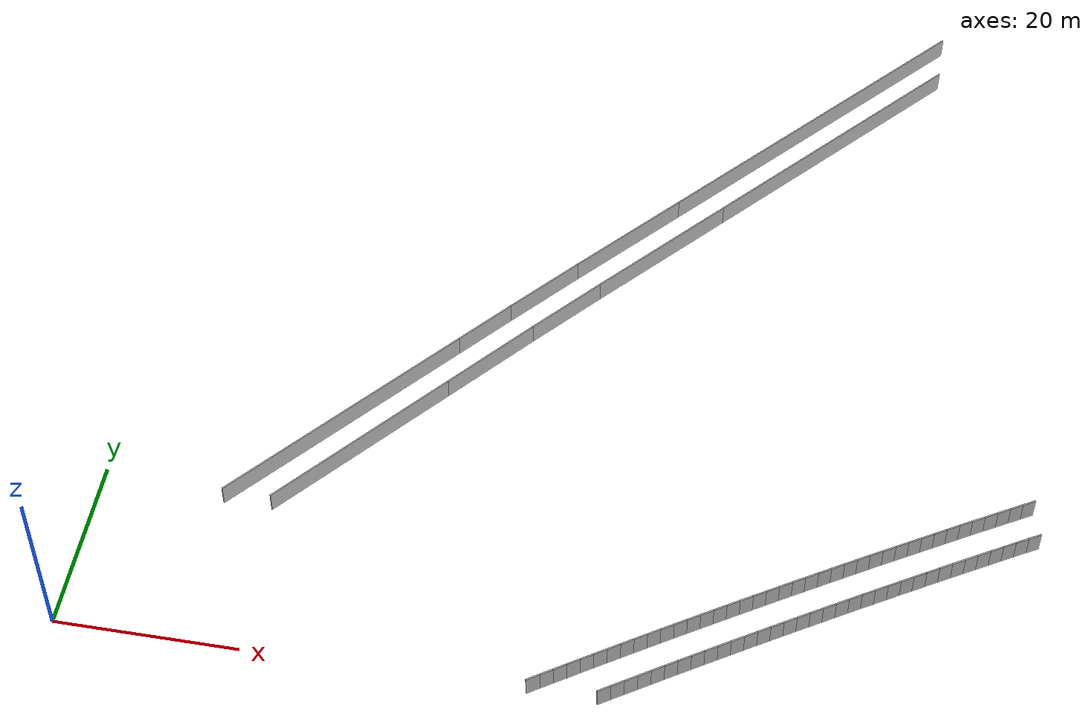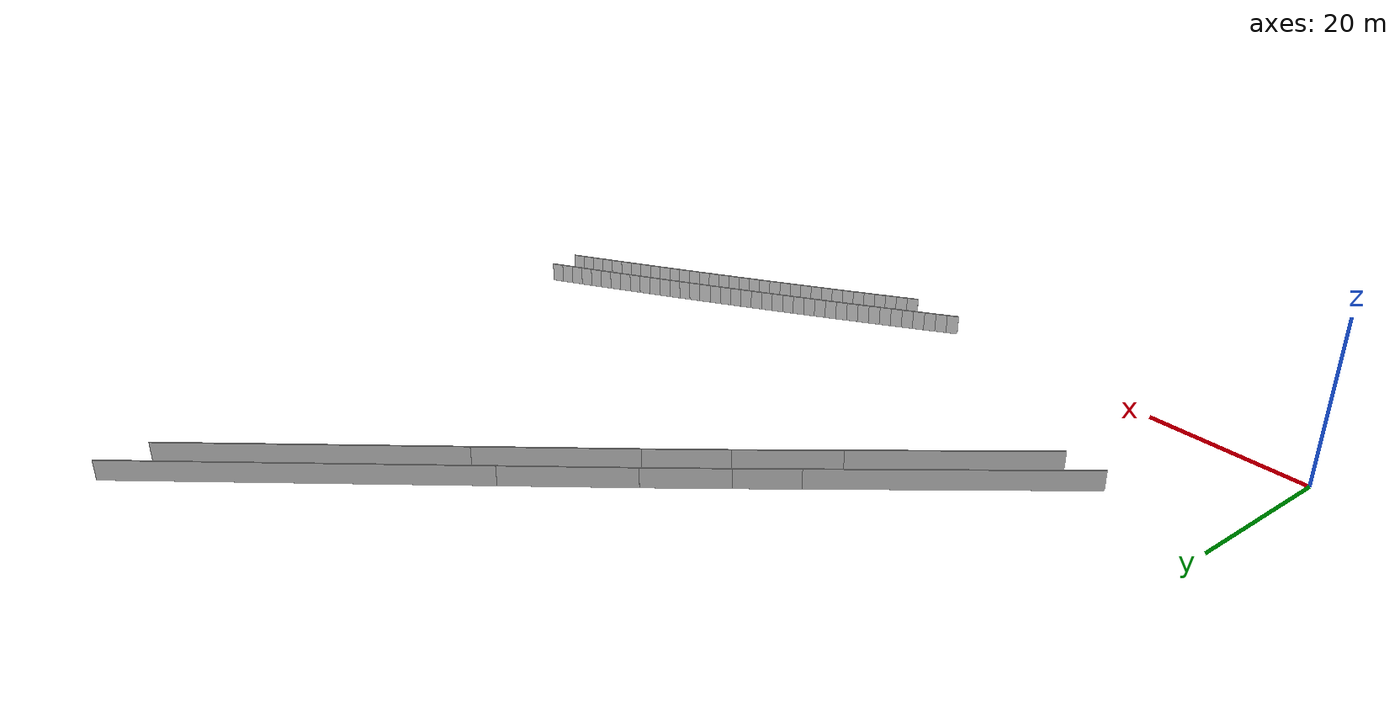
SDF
<?xml version="1.0" ?>
<sdf version="1.6">
  <model name="sps_0622">
    <pose frame="">0 0 0 0 -0 0</pose>
    <static>1</static>
    <self_collide>0</self_collide>
    <allow_auto_disable>0</allow_auto_disable>
    <link name="Wall46">
      <kinematic>0</kinematic>
      <gravity>1</gravity>
      <self_collide>0</self_collide>
      <collision name="collision">
        <geometry>
          <box>
            <size>9.91273 0.15 2.5</size>
          </box>
        </geometry>
        <pose frame="">0 0 0 0 -0 0</pose>
      </collision>
      <visual name="visual">
        <geometry>
          <box>
            <size>9.91273 0.15 2.5</size>
          </box>
        </geometry>
        <pose frame="">0 0 0 0 -0 0</pose>
        <cast_shadows>1</cast_shadows>
        <transparency>0.0</transparency>
      </visual>
      <pose frame="">45.5794 49.8246 1.25 0 0 -2.2749</pose>
    </link>
    <link name="Wall210">
      <kinematic>0</kinematic>
      <gravity>1</gravity>
      <self_collide>0</self_collide>
      <collision name="collision">
        <geometry>
          <box>
            <size>7.53093 0.15 2.5</size>
          </box>
        </geometry>
        <pose frame="">0 0 0 0 -0 0</pose>
      </collision>
      <visual name="visual">
        <geometry>
          <box>
            <size>7.53093 0.15 2.5</size>
          </box>
        </geometry>
        <pose frame="">0 0 0 0 -0 0</pose>
        <cast_shadows>1</cast_shadows>
        <transparency>0.0</transparency>
      </visual>
      <pose frame="">36.8851 45.7124 1.25 0 0 -2.26727</pose>
    </link>
    <link name="Wall211">
      <kinematic>0</kinematic>
      <gravity>1</gravity>
      <self_collide>0</self_collide>
      <collision name="collision">
        <geometry>
          <box>
            <size>32.4998 0.15 2.5</size>
          </box>
        </geometry>
        <pose frame="">0 0 0 0 -0 0</pose>
      </collision>
      <visual name="visual">
        <geometry>
          <box>
            <size>32.4998 0.15 2.5</size>
          </box>
        </geometry>
        <pose frame="">0 0 0 0 -0 0</pose>
        <cast_shadows>1</cast_shadows>
        <transparency>0.0</transparency>
      </visual>
      <pose frame="">24.0448 30.3585 1.25 0 0 -2.26727</pose>
    </link>
    <link name="Wall223">
      <kinematic>0</kinematic>
      <gravity>1</gravity>
      <self_collide>0</self_collide>
      <collision name="collision">
        <geometry>
          <box>
            <size>24.2854 0.15 2.5</size>
          </box>
        </geometry>
        <pose frame="">0 0 0 0 -0 0</pose>
      </collision>
      <visual name="visual">
        <geometry>
          <box>
            <size>24.2854 0.15 2.5</size>
          </box>
        </geometry>
        <pose frame="">0 0 0 0 -0 0</pose>
        <cast_shadows>1</cast_shadows>
        <transparency>0.0</transparency>
      </visual>
      <pose frame="">26.7001 27.2248 1.25 0 -0 0.876505</pose>
    </link>
    <link name="Wall224">
      <kinematic>0</kinematic>
      <gravity>1</gravity>
      <self_collide>0</self_collide>
      <collision name="collision">
        <geometry>
          <box>
            <size>12.349 0.15 2.5</size>
          </box>
        </geometry>
        <pose frame="">0 0 0 0 -0 0</pose>
      </collision>
      <visual name="visual">
        <geometry>
          <box>
            <size>12.349 0.15 2.5</size>
          </box>
        </geometry>
        <pose frame="">0 0 0 0 -0 0</pose>
        <cast_shadows>1</cast_shadows>
        <transparency>0.0</transparency>
      </visual>
      <pose frame="">38.4202 41.3017 1.25 0 -0 0.876505</pose>
    </link>
    <link name="Wall230">
      <kinematic>0</kinematic>
      <gravity>1</gravity>
      <self_collide>0</self_collide>
      <collision name="collision">
        <geometry>
          <box>
            <size>35.7402 0.15 2.5</size>
          </box>
        </geometry>
        <pose frame="">0 0 0 0 -0 0</pose>
      </collision>
      <visual name="visual">
        <geometry>
          <box>
            <size>35.7402 0.15 2.5</size>
          </box>
        </geometry>
        <pose frame="">0 0 0 0 -0 0</pose>
        <cast_shadows>1</cast_shadows>
        <transparency>0.0</transparency>
      </visual>
      <pose frame="">72.7946 81.4223 1.25 0 0 -2.28275</pose>
    </link>
    <link name="Wall231">
      <kinematic>0</kinematic>
      <gravity>1</gravity>
      <self_collide>0</self_collide>
      <collision name="collision">
        <geometry>
          <box>
            <size>18.876 0.15 2.5</size>
          </box>
        </geometry>
        <pose frame="">0 0 0 0 -0 0</pose>
      </collision>
      <visual name="visual">
        <geometry>
          <box>
            <size>18.876 0.15 2.5</size>
          </box>
        </geometry>
        <pose frame="">0 0 0 0 -0 0</pose>
        <cast_shadows>1</cast_shadows>
        <transparency>0.0</transparency>
      </visual>
      <pose frame="">54.9538 60.7477 1.25 0 0 -2.28275</pose>
    </link>
    <link name="Wall451">
      <kinematic>0</kinematic>
      <gravity>1</gravity>
      <self_collide>0</self_collide>
      <collision name="collision">
        <geometry>
          <box>
            <size>43.8283 0.15 2.5</size>
          </box>
        </geometry>
        <pose frame="">0 0 0 0 -0 0</pose>
      </collision>
      <visual name="visual">
        <geometry>
          <box>
            <size>43.8283 0.15 2.5</size>
          </box>
        </geometry>
        <pose frame="">0 0 0 0 -0 0</pose>
        <cast_shadows>1</cast_shadows>
        <transparency>0.0</transparency>
      </visual>
      <pose frame="">70.1528 84.4841 1.25 0 0 -2.28274</pose>
    </link>
    <link name="Wall452">
      <kinematic>0</kinematic>
      <gravity>1</gravity>
      <self_collide>0</self_collide>
      <collision name="collision">
        <geometry>
          <box>
            <size>15.4266 0.15 2.5</size>
          </box>
        </geometry>
        <pose frame="">0 0 0 0 -0 0</pose>
      </collision>
      <visual name="visual">
        <geometry>
          <box>
            <size>15.4266 0.15 2.5</size>
          </box>
        </geometry>
        <pose frame="">0 0 0 0 -0 0</pose>
        <cast_shadows>1</cast_shadows>
        <transparency>0.0</transparency>
      </visual>
      <pose frame="">50.797 62.0534 1.25 0 0 -2.28274</pose>
    </link>
    <link name="Wall624">
      <kinematic>0</kinematic>
      <gravity>1</gravity>
      <self_collide>0</self_collide>
      <collision name="collision">
        <geometry>
          <box>
            <size>9.98246 0.15 2.5</size>
          </box>
        </geometry>
        <pose frame="">0 0 0 0 -0 0</pose>
      </collision>
      <visual name="visual">
        <geometry>
          <box>
            <size>9.98246 0.15 2.5</size>
          </box>
        </geometry>
        <pose frame="">0 0 0 0 -0 0</pose>
        <cast_shadows>1</cast_shadows>
        <transparency>0.0</transparency>
      </visual>
      <pose frame="">42.5293 52.4073 1.25 0 0 -2.27424</pose>
    </link>
    <link name="Wall3242">
      <kinematic>0</kinematic>
      <gravity>1</gravity>
      <self_collide>0</self_collide>
      <collision name="collision">
        <geometry>
          <box>
            <size>1.49639 0.15 2.5</size>
          </box>
        </geometry>
        <pose frame="">0 0 0 0 -0 0</pose>
      </collision>
      <visual name="visual">
        <geometry>
          <box>
            <size>1.49639 0.15 2.5</size>
          </box>
        </geometry>
        <pose frame="">0 0 0 0 -0 0</pose>
        <cast_shadows>1</cast_shadows>
        <transparency>0.0</transparency>
      </visual>
      <pose frame="">99.6462 26.6387 1.25 0 0 -2.60515</pose>
    </link>
    <link name="Wall3243">
      <kinematic>0</kinematic>
      <gravity>1</gravity>
      <self_collide>0</self_collide>
      <collision name="collision">
        <geometry>
          <box>
            <size>1.4967 0.15 2.5</size>
          </box>
        </geometry>
        <pose frame="">0 0 0 0 -0 0</pose>
      </collision>
      <visual name="visual">
        <geometry>
          <box>
            <size>1.4967 0.15 2.5</size>
          </box>
        </geometry>
        <pose frame="">0 0 0 0 -0 0</pose>
        <cast_shadows>1</cast_shadows>
        <transparency>0.0</transparency>
      </visual>
      <pose frame="">98.3605 25.8728 1.25 0 0 -2.60352</pose>
    </link>
    <link name="Wall3244">
      <kinematic>0</kinematic>
      <gravity>1</gravity>
      <self_collide>0</self_collide>
      <collision name="collision">
        <geometry>
          <box>
            <size>1.49641 0.15 2.5</size>
          </box>
        </geometry>
        <pose frame="">0 0 0 0 -0 0</pose>
      </collision>
      <visual name="visual">
        <geometry>
          <box>
            <size>1.49641 0.15 2.5</size>
          </box>
        </geometry>
        <pose frame="">0 0 0 0 -0 0</pose>
        <cast_shadows>1</cast_shadows>
        <transparency>0.0</transparency>
      </visual>
      <pose frame="">97.0759 25.1049 1.25 0 0 -2.60203</pose>
    </link>
    <link name="Wall3245">
      <kinematic>0</kinematic>
      <gravity>1</gravity>
      <self_collide>0</self_collide>
      <collision name="collision">
        <geometry>
          <box>
            <size>1.49652 0.15 2.5</size>
          </box>
        </geometry>
        <pose frame="">0 0 0 0 -0 0</pose>
      </collision>
      <visual name="visual">
        <geometry>
          <box>
            <size>1.49652 0.15 2.5</size>
          </box>
        </geometry>
        <pose frame="">0 0 0 0 -0 0</pose>
        <cast_shadows>1</cast_shadows>
        <transparency>0.0</transparency>
      </visual>
      <pose frame="">95.7927 24.3351 1.25 0 0 -2.60055</pose>
    </link>
    <link name="Wall3246">
      <kinematic>0</kinematic>
      <gravity>1</gravity>
      <self_collide>0</self_collide>
      <collision name="collision">
        <geometry>
          <box>
            <size>1.49653 0.15 2.5</size>
          </box>
        </geometry>
        <pose frame="">0 0 0 0 -0 0</pose>
      </collision>
      <visual name="visual">
        <geometry>
          <box>
            <size>1.49653 0.15 2.5</size>
          </box>
        </geometry>
        <pose frame="">0 0 0 0 -0 0</pose>
        <cast_shadows>1</cast_shadows>
        <transparency>0.0</transparency>
      </visual>
      <pose frame="">94.5106 23.5632 1.25 0 0 -2.5988</pose>
    </link>
    <link name="Wall3247">
      <kinematic>0</kinematic>
      <gravity>1</gravity>
      <self_collide>0</self_collide>
      <collision name="collision">
        <geometry>
          <box>
            <size>1.49648 0.15 2.5</size>
          </box>
        </geometry>
        <pose frame="">0 0 0 0 -0 0</pose>
      </collision>
      <visual name="visual">
        <geometry>
          <box>
            <size>1.49648 0.15 2.5</size>
          </box>
        </geometry>
        <pose frame="">0 0 0 0 -0 0</pose>
        <cast_shadows>1</cast_shadows>
        <transparency>0.0</transparency>
      </visual>
      <pose frame="">93.2298 22.7892 1.25 0 0 -2.5972</pose>
    </link>
    <link name="Wall3248">
      <kinematic>0</kinematic>
      <gravity>1</gravity>
      <self_collide>0</self_collide>
      <collision name="collision">
        <geometry>
          <box>
            <size>1.49655 0.15 2.5</size>
          </box>
        </geometry>
        <pose frame="">0 0 0 0 -0 0</pose>
      </collision>
      <visual name="visual">
        <geometry>
          <box>
            <size>1.49655 0.15 2.5</size>
          </box>
        </geometry>
        <pose frame="">0 0 0 0 -0 0</pose>
        <cast_shadows>1</cast_shadows>
        <transparency>0.0</transparency>
      </visual>
      <pose frame="">91.9502 22.0132 1.25 0 0 -2.5957</pose>
    </link>
    <link name="Wall3249">
      <kinematic>0</kinematic>
      <gravity>1</gravity>
      <self_collide>0</self_collide>
      <collision name="collision">
        <geometry>
          <box>
            <size>1.49663 0.15 2.5</size>
          </box>
        </geometry>
        <pose frame="">0 0 0 0 -0 0</pose>
      </collision>
      <visual name="visual">
        <geometry>
          <box>
            <size>1.49663 0.15 2.5</size>
          </box>
        </geometry>
        <pose frame="">0 0 0 0 -0 0</pose>
        <cast_shadows>1</cast_shadows>
        <transparency>0.0</transparency>
      </visual>
      <pose frame="">90.6717 21.2351 1.25 0 0 -2.59397</pose>
    </link>
    <link name="Wall3250">
      <kinematic>0</kinematic>
      <gravity>1</gravity>
      <self_collide>0</self_collide>
      <collision name="collision">
        <geometry>
          <box>
            <size>1.49641 0.15 2.5</size>
          </box>
        </geometry>
        <pose frame="">0 0 0 0 -0 0</pose>
      </collision>
      <visual name="visual">
        <geometry>
          <box>
            <size>1.49641 0.15 2.5</size>
          </box>
        </geometry>
        <pose frame="">0 0 0 0 -0 0</pose>
        <cast_shadows>1</cast_shadows>
        <transparency>0.0</transparency>
      </visual>
      <pose frame="">89.3946 20.455 1.25 0 0 -2.59249</pose>
    </link>
    <link name="Wall3251">
      <kinematic>0</kinematic>
      <gravity>1</gravity>
      <self_collide>0</self_collide>
      <collision name="collision">
        <geometry>
          <box>
            <size>1.49634 0.15 2.5</size>
          </box>
        </geometry>
        <pose frame="">0 0 0 0 -0 0</pose>
      </collision>
      <visual name="visual">
        <geometry>
          <box>
            <size>1.49634 0.15 2.5</size>
          </box>
        </geometry>
        <pose frame="">0 0 0 0 -0 0</pose>
        <cast_shadows>1</cast_shadows>
        <transparency>0.0</transparency>
      </visual>
      <pose frame="">88.1189 19.673 1.25 0 0 -2.59093</pose>
    </link>
    <link name="Wall3252">
      <kinematic>0</kinematic>
      <gravity>1</gravity>
      <self_collide>0</self_collide>
      <collision name="collision">
        <geometry>
          <box>
            <size>1.49658 0.15 2.5</size>
          </box>
        </geometry>
        <pose frame="">0 0 0 0 -0 0</pose>
      </collision>
      <visual name="visual">
        <geometry>
          <box>
            <size>1.49658 0.15 2.5</size>
          </box>
        </geometry>
        <pose frame="">0 0 0 0 -0 0</pose>
        <cast_shadows>1</cast_shadows>
        <transparency>0.0</transparency>
      </visual>
      <pose frame="">86.8443 18.8889 1.25 0 0 -2.58926</pose>
    </link>
    <link name="Wall3253">
      <kinematic>0</kinematic>
      <gravity>1</gravity>
      <self_collide>0</self_collide>
      <collision name="collision">
        <geometry>
          <box>
            <size>1.49642 0.15 2.5</size>
          </box>
        </geometry>
        <pose frame="">0 0 0 0 -0 0</pose>
      </collision>
      <visual name="visual">
        <geometry>
          <box>
            <size>1.49642 0.15 2.5</size>
          </box>
        </geometry>
        <pose frame="">0 0 0 0 -0 0</pose>
        <cast_shadows>1</cast_shadows>
        <transparency>0.0</transparency>
      </visual>
      <pose frame="">85.5709 18.1028 1.25 0 0 -2.58781</pose>
    </link>
    <link name="Wall3254">
      <kinematic>0</kinematic>
      <gravity>1</gravity>
      <self_collide>0</self_collide>
      <collision name="collision">
        <geometry>
          <box>
            <size>1.49659 0.15 2.5</size>
          </box>
        </geometry>
        <pose frame="">0 0 0 0 -0 0</pose>
      </collision>
      <visual name="visual">
        <geometry>
          <box>
            <size>1.49659 0.15 2.5</size>
          </box>
        </geometry>
        <pose frame="">0 0 0 0 -0 0</pose>
        <cast_shadows>1</cast_shadows>
        <transparency>0.0</transparency>
      </visual>
      <pose frame="">84.2987 17.3147 1.25 0 0 -2.58615</pose>
    </link>
    <link name="Wall3255">
      <kinematic>0</kinematic>
      <gravity>1</gravity>
      <self_collide>0</self_collide>
      <collision name="collision">
        <geometry>
          <box>
            <size>1.49647 0.15 2.5</size>
          </box>
        </geometry>
        <pose frame="">0 0 0 0 -0 0</pose>
      </collision>
      <visual name="visual">
        <geometry>
          <box>
            <size>1.49647 0.15 2.5</size>
          </box>
        </geometry>
        <pose frame="">0 0 0 0 -0 0</pose>
        <cast_shadows>1</cast_shadows>
        <transparency>0.0</transparency>
      </visual>
      <pose frame="">83.0278 16.5245 1.25 0 0 -2.58451</pose>
    </link>
    <link name="Wall3256">
      <kinematic>0</kinematic>
      <gravity>1</gravity>
      <self_collide>0</self_collide>
      <collision name="collision">
        <geometry>
          <box>
            <size>1.4965 0.15 2.5</size>
          </box>
        </geometry>
        <pose frame="">0 0 0 0 -0 0</pose>
      </collision>
      <visual name="visual">
        <geometry>
          <box>
            <size>1.4965 0.15 2.5</size>
          </box>
        </geometry>
        <pose frame="">0 0 0 0 -0 0</pose>
        <cast_shadows>1</cast_shadows>
        <transparency>0.0</transparency>
      </visual>
      <pose frame="">81.7582 15.7323 1.25 0 0 -2.58294</pose>
    </link>
    <link name="Wall3257">
      <kinematic>0</kinematic>
      <gravity>1</gravity>
      <self_collide>0</self_collide>
      <collision name="collision">
        <geometry>
          <box>
            <size>1.49658 0.15 2.5</size>
          </box>
        </geometry>
        <pose frame="">0 0 0 0 -0 0</pose>
      </collision>
      <visual name="visual">
        <geometry>
          <box>
            <size>1.49658 0.15 2.5</size>
          </box>
        </geometry>
        <pose frame="">0 0 0 0 -0 0</pose>
        <cast_shadows>1</cast_shadows>
        <transparency>0.0</transparency>
      </visual>
      <pose frame="">80.4898 14.9381 1.25 0 0 -2.58139</pose>
    </link>
    <link name="Wall3258">
      <kinematic>0</kinematic>
      <gravity>1</gravity>
      <self_collide>0</self_collide>
      <collision name="collision">
        <geometry>
          <box>
            <size>1.49634 0.15 2.5</size>
          </box>
        </geometry>
        <pose frame="">0 0 0 0 -0 0</pose>
      </collision>
      <visual name="visual">
        <geometry>
          <box>
            <size>1.49634 0.15 2.5</size>
          </box>
        </geometry>
        <pose frame="">0 0 0 0 -0 0</pose>
        <cast_shadows>1</cast_shadows>
        <transparency>0.0</transparency>
      </visual>
      <pose frame="">79.2226 14.142 1.25 0 0 -2.57988</pose>
    </link>
    <link name="Wall3259">
      <kinematic>0</kinematic>
      <gravity>1</gravity>
      <self_collide>0</self_collide>
      <collision name="collision">
        <geometry>
          <box>
            <size>1.49663 0.15 2.5</size>
          </box>
        </geometry>
        <pose frame="">0 0 0 0 -0 0</pose>
      </collision>
      <visual name="visual">
        <geometry>
          <box>
            <size>1.49663 0.15 2.5</size>
          </box>
        </geometry>
        <pose frame="">0 0 0 0 -0 0</pose>
        <cast_shadows>1</cast_shadows>
        <transparency>0.0</transparency>
      </visual>
      <pose frame="">77.9567 13.3439 1.25 0 0 -2.57827</pose>
    </link>
    <link name="Wall3260">
      <kinematic>0</kinematic>
      <gravity>1</gravity>
      <self_collide>0</self_collide>
      <collision name="collision">
        <geometry>
          <box>
            <size>1.49652 0.15 2.5</size>
          </box>
        </geometry>
        <pose frame="">0 0 0 0 -0 0</pose>
      </collision>
      <visual name="visual">
        <geometry>
          <box>
            <size>1.49652 0.15 2.5</size>
          </box>
        </geometry>
        <pose frame="">0 0 0 0 -0 0</pose>
        <cast_shadows>1</cast_shadows>
        <transparency>0.0</transparency>
      </visual>
      <pose frame="">76.6921 12.5437 1.25 0 0 -2.57663</pose>
    </link>
    <link name="Wall3261">
      <kinematic>0</kinematic>
      <gravity>1</gravity>
      <self_collide>0</self_collide>
      <collision name="collision">
        <geometry>
          <box>
            <size>1.49643 0.15 2.5</size>
          </box>
        </geometry>
        <pose frame="">0 0 0 0 -0 0</pose>
      </collision>
      <visual name="visual">
        <geometry>
          <box>
            <size>1.49643 0.15 2.5</size>
          </box>
        </geometry>
        <pose frame="">0 0 0 0 -0 0</pose>
        <cast_shadows>1</cast_shadows>
        <transparency>0.0</transparency>
      </visual>
      <pose frame="">75.4288 11.7415 1.25 0 0 -2.57505</pose>
    </link>
    <link name="Wall3262">
      <kinematic>0</kinematic>
      <gravity>1</gravity>
      <self_collide>0</self_collide>
      <collision name="collision">
        <geometry>
          <box>
            <size>1.49652 0.15 2.5</size>
          </box>
        </geometry>
        <pose frame="">0 0 0 0 -0 0</pose>
      </collision>
      <visual name="visual">
        <geometry>
          <box>
            <size>1.49652 0.15 2.5</size>
          </box>
        </geometry>
        <pose frame="">0 0 0 0 -0 0</pose>
        <cast_shadows>1</cast_shadows>
        <transparency>0.0</transparency>
      </visual>
      <pose frame="">74.1667 10.9373 1.25 0 0 -2.57344</pose>
    </link>
    <link name="Wall3263">
      <kinematic>0</kinematic>
      <gravity>1</gravity>
      <self_collide>0</self_collide>
      <collision name="collision">
        <geometry>
          <box>
            <size>1.49644 0.15 2.5</size>
          </box>
        </geometry>
        <pose frame="">0 0 0 0 -0 0</pose>
      </collision>
      <visual name="visual">
        <geometry>
          <box>
            <size>1.49644 0.15 2.5</size>
          </box>
        </geometry>
        <pose frame="">0 0 0 0 -0 0</pose>
        <cast_shadows>1</cast_shadows>
        <transparency>0.0</transparency>
      </visual>
      <pose frame="">72.9059 10.1312 1.25 0 0 -2.57201</pose>
    </link>
    <link name="Wall3264">
      <kinematic>0</kinematic>
      <gravity>1</gravity>
      <self_collide>0</self_collide>
      <collision name="collision">
        <geometry>
          <box>
            <size>1.49645 0.15 2.5</size>
          </box>
        </geometry>
        <pose frame="">0 0 0 0 -0 0</pose>
      </collision>
      <visual name="visual">
        <geometry>
          <box>
            <size>1.49645 0.15 2.5</size>
          </box>
        </geometry>
        <pose frame="">0 0 0 0 -0 0</pose>
        <cast_shadows>1</cast_shadows>
        <transparency>0.0</transparency>
      </visual>
      <pose frame="">71.6464 9.32307 1.25 0 0 -2.57026</pose>
    </link>
    <link name="Wall3265">
      <kinematic>0</kinematic>
      <gravity>1</gravity>
      <self_collide>0</self_collide>
      <collision name="collision">
        <geometry>
          <box>
            <size>1.49661 0.15 2.5</size>
          </box>
        </geometry>
        <pose frame="">0 0 0 0 -0 0</pose>
      </collision>
      <visual name="visual">
        <geometry>
          <box>
            <size>1.49661 0.15 2.5</size>
          </box>
        </geometry>
        <pose frame="">0 0 0 0 -0 0</pose>
        <cast_shadows>1</cast_shadows>
        <transparency>0.0</transparency>
      </visual>
      <pose frame="">70.3883 8.51277 1.25 0 0 -2.56859</pose>
    </link>
    <link name="Wall3266">
      <kinematic>0</kinematic>
      <gravity>1</gravity>
      <self_collide>0</self_collide>
      <collision name="collision">
        <geometry>
          <box>
            <size>1.4965 0.15 2.5</size>
          </box>
        </geometry>
        <pose frame="">0 0 0 0 -0 0</pose>
      </collision>
      <visual name="visual">
        <geometry>
          <box>
            <size>1.4965 0.15 2.5</size>
          </box>
        </geometry>
        <pose frame="">0 0 0 0 -0 0</pose>
        <cast_shadows>1</cast_shadows>
        <transparency>0.0</transparency>
      </visual>
      <pose frame="">69.1313 7.70058 1.25 0 0 -2.56728</pose>
    </link>
    <link name="Wall3267">
      <kinematic>0</kinematic>
      <gravity>1</gravity>
      <self_collide>0</self_collide>
      <collision name="collision">
        <geometry>
          <box>
            <size>1.49662 0.15 2.5</size>
          </box>
        </geometry>
        <pose frame="">0 0 0 0 -0 0</pose>
      </collision>
      <visual name="visual">
        <geometry>
          <box>
            <size>1.49662 0.15 2.5</size>
          </box>
        </geometry>
        <pose frame="">0 0 0 0 -0 0</pose>
        <cast_shadows>1</cast_shadows>
        <transparency>0.0</transparency>
      </visual>
      <pose frame="">67.8756 6.8864 1.25 0 0 -2.56543</pose>
    </link>
    <link name="Wall3268">
      <kinematic>0</kinematic>
      <gravity>1</gravity>
      <self_collide>0</self_collide>
      <collision name="collision">
        <geometry>
          <box>
            <size>1.49634 0.15 2.5</size>
          </box>
        </geometry>
        <pose frame="">0 0 0 0 -0 0</pose>
      </collision>
      <visual name="visual">
        <geometry>
          <box>
            <size>1.49634 0.15 2.5</size>
          </box>
        </geometry>
        <pose frame="">0 0 0 0 -0 0</pose>
        <cast_shadows>1</cast_shadows>
        <transparency>0.0</transparency>
      </visual>
      <pose frame="">66.6213 6.0702 1.25 0 0 -2.564</pose>
    </link>
    <link name="Wall3269">
      <kinematic>0</kinematic>
      <gravity>1</gravity>
      <self_collide>0</self_collide>
      <collision name="collision">
        <geometry>
          <box>
            <size>1.49657 0.15 2.5</size>
          </box>
        </geometry>
        <pose frame="">0 0 0 0 -0 0</pose>
      </collision>
      <visual name="visual">
        <geometry>
          <box>
            <size>1.49657 0.15 2.5</size>
          </box>
        </geometry>
        <pose frame="">0 0 0 0 -0 0</pose>
        <cast_shadows>1</cast_shadows>
        <transparency>0.0</transparency>
      </visual>
      <pose frame="">65.3682 5.25209 1.25 0 0 -2.56235</pose>
    </link>
    <link name="Wall3270">
      <kinematic>0</kinematic>
      <gravity>1</gravity>
      <self_collide>0</self_collide>
      <collision name="collision">
        <geometry>
          <box>
            <size>1.49631 0.15 2.5</size>
          </box>
        </geometry>
        <pose frame="">0 0 0 0 -0 0</pose>
      </collision>
      <visual name="visual">
        <geometry>
          <box>
            <size>1.49631 0.15 2.5</size>
          </box>
        </geometry>
        <pose frame="">0 0 0 0 -0 0</pose>
        <cast_shadows>1</cast_shadows>
        <transparency>0.0</transparency>
      </visual>
      <pose frame="">64.1165 4.43199 1.25 0 0 -2.56082</pose>
    </link>
    <link name="Wall3271">
      <kinematic>0</kinematic>
      <gravity>1</gravity>
      <self_collide>0</self_collide>
      <collision name="collision">
        <geometry>
          <box>
            <size>1.49655 0.15 2.5</size>
          </box>
        </geometry>
        <pose frame="">0 0 0 0 -0 0</pose>
      </collision>
      <visual name="visual">
        <geometry>
          <box>
            <size>1.49655 0.15 2.5</size>
          </box>
        </geometry>
        <pose frame="">0 0 0 0 -0 0</pose>
        <cast_shadows>1</cast_shadows>
        <transparency>0.0</transparency>
      </visual>
      <pose frame="">62.8661 3.60991 1.25 0 0 -2.55917</pose>
    </link>
    <link name="Wall3272">
      <kinematic>0</kinematic>
      <gravity>1</gravity>
      <self_collide>0</self_collide>
      <collision name="collision">
        <geometry>
          <box>
            <size>1.49654 0.15 2.5</size>
          </box>
        </geometry>
        <pose frame="">0 0 0 0 -0 0</pose>
      </collision>
      <visual name="visual">
        <geometry>
          <box>
            <size>1.49654 0.15 2.5</size>
          </box>
        </geometry>
        <pose frame="">0 0 0 0 -0 0</pose>
        <cast_shadows>1</cast_shadows>
        <transparency>0.0</transparency>
      </visual>
      <pose frame="">61.6169 2.78581 1.25 0 0 -2.5577</pose>
    </link>
    <link name="Wall3273">
      <kinematic>0</kinematic>
      <gravity>1</gravity>
      <self_collide>0</self_collide>
      <collision name="collision">
        <geometry>
          <box>
            <size>1.49648 0.15 2.5</size>
          </box>
        </geometry>
        <pose frame="">0 0 0 0 -0 0</pose>
      </collision>
      <visual name="visual">
        <geometry>
          <box>
            <size>1.49648 0.15 2.5</size>
          </box>
        </geometry>
        <pose frame="">0 0 0 0 -0 0</pose>
        <cast_shadows>1</cast_shadows>
        <transparency>0.0</transparency>
      </visual>
      <pose frame="">60.369 1.95979 1.25 0 0 -2.55606</pose>
    </link>
    <link name="Wall3274">
      <kinematic>0</kinematic>
      <gravity>1</gravity>
      <self_collide>0</self_collide>
      <collision name="collision">
        <geometry>
          <box>
            <size>1.49655 0.15 2.5</size>
          </box>
        </geometry>
        <pose frame="">0 0 0 0 -0 0</pose>
      </collision>
      <visual name="visual">
        <geometry>
          <box>
            <size>1.49655 0.15 2.5</size>
          </box>
        </geometry>
        <pose frame="">0 0 0 0 -0 0</pose>
        <cast_shadows>1</cast_shadows>
        <transparency>0.0</transparency>
      </visual>
      <pose frame="">59.1225 1.13179 1.25 0 0 -2.55452</pose>
    </link>
    <link name="Wall3275">
      <kinematic>0</kinematic>
      <gravity>1</gravity>
      <self_collide>0</self_collide>
      <collision name="collision">
        <geometry>
          <box>
            <size>1.49655 0.15 2.5</size>
          </box>
        </geometry>
        <pose frame="">0 0 0 0 -0 0</pose>
      </collision>
      <visual name="visual">
        <geometry>
          <box>
            <size>1.49655 0.15 2.5</size>
          </box>
        </geometry>
        <pose frame="">0 0 0 0 -0 0</pose>
        <cast_shadows>1</cast_shadows>
        <transparency>0.0</transparency>
      </visual>
      <pose frame="">57.8772 0.301803 1.25 0 0 -2.5529</pose>
    </link>
    <link name="Wall5852">
      <kinematic>0</kinematic>
      <gravity>1</gravity>
      <self_collide>0</self_collide>
      <collision name="collision">
        <geometry>
          <box>
            <size>1.50314 0.15 2.5</size>
          </box>
        </geometry>
        <pose frame="">0 0 0 0 -0 0</pose>
      </collision>
      <visual name="visual">
        <geometry>
          <box>
            <size>1.50314 0.15 2.5</size>
          </box>
        </geometry>
        <pose frame="">0 0 0 0 -0 0</pose>
        <cast_shadows>1</cast_shadows>
        <transparency>0.0</transparency>
      </visual>
      <pose frame="">98.8134 30.9586 1.25 0 0 -2.60674</pose>
    </link>
    <link name="Wall5853">
      <kinematic>0</kinematic>
      <gravity>1</gravity>
      <self_collide>0</self_collide>
      <collision name="collision">
        <geometry>
          <box>
            <size>1.50315 0.15 2.5</size>
          </box>
        </geometry>
        <pose frame="">0 0 0 0 -0 0</pose>
      </collision>
      <visual name="visual">
        <geometry>
          <box>
            <size>1.50315 0.15 2.5</size>
          </box>
        </geometry>
        <pose frame="">0 0 0 0 -0 0</pose>
        <cast_shadows>1</cast_shadows>
        <transparency>0.0</transparency>
      </visual>
      <pose frame="">97.5208 30.1914 1.25 0 0 -2.60514</pose>
    </link>
    <link name="Wall5854">
      <kinematic>0</kinematic>
      <gravity>1</gravity>
      <self_collide>0</self_collide>
      <collision name="collision">
        <geometry>
          <box>
            <size>1.50282 0.15 2.5</size>
          </box>
        </geometry>
        <pose frame="">0 0 0 0 -0 0</pose>
      </collision>
      <visual name="visual">
        <geometry>
          <box>
            <size>1.50282 0.15 2.5</size>
          </box>
        </geometry>
        <pose frame="">0 0 0 0 -0 0</pose>
        <cast_shadows>1</cast_shadows>
        <transparency>0.0</transparency>
      </visual>
      <pose frame="">96.2295 29.4223 1.25 0 0 -2.60368</pose>
    </link>
    <link name="Wall5855">
      <kinematic>0</kinematic>
      <gravity>1</gravity>
      <self_collide>0</self_collide>
      <collision name="collision">
        <geometry>
          <box>
            <size>1.50323 0.15 2.5</size>
          </box>
        </geometry>
        <pose frame="">0 0 0 0 -0 0</pose>
      </collision>
      <visual name="visual">
        <geometry>
          <box>
            <size>1.50323 0.15 2.5</size>
          </box>
        </geometry>
        <pose frame="">0 0 0 0 -0 0</pose>
        <cast_shadows>1</cast_shadows>
        <transparency>0.0</transparency>
      </visual>
      <pose frame="">94.9394 28.6511 1.25 0 0 -2.60195</pose>
    </link>
    <link name="Wall5856">
      <kinematic>0</kinematic>
      <gravity>1</gravity>
      <self_collide>0</self_collide>
      <collision name="collision">
        <geometry>
          <box>
            <size>1.50297 0.15 2.5</size>
          </box>
        </geometry>
        <pose frame="">0 0 0 0 -0 0</pose>
      </collision>
      <visual name="visual">
        <geometry>
          <box>
            <size>1.50297 0.15 2.5</size>
          </box>
        </geometry>
        <pose frame="">0 0 0 0 -0 0</pose>
        <cast_shadows>1</cast_shadows>
        <transparency>0.0</transparency>
      </visual>
      <pose frame="">93.6505 27.8778 1.25 0 0 -2.60043</pose>
    </link>
    <link name="Wall5857">
      <kinematic>0</kinematic>
      <gravity>1</gravity>
      <self_collide>0</self_collide>
      <collision name="collision">
        <geometry>
          <box>
            <size>1.50315 0.15 2.5</size>
          </box>
        </geometry>
        <pose frame="">0 0 0 0 -0 0</pose>
      </collision>
      <visual name="visual">
        <geometry>
          <box>
            <size>1.50315 0.15 2.5</size>
          </box>
        </geometry>
        <pose frame="">0 0 0 0 -0 0</pose>
        <cast_shadows>1</cast_shadows>
        <transparency>0.0</transparency>
      </visual>
      <pose frame="">92.3629 27.1024 1.25 0 0 -2.59865</pose>
    </link>
    <link name="Wall5858">
      <kinematic>0</kinematic>
      <gravity>1</gravity>
      <self_collide>0</self_collide>
      <collision name="collision">
        <geometry>
          <box>
            <size>1.50302 0.15 2.5</size>
          </box>
        </geometry>
        <pose frame="">0 0 0 0 -0 0</pose>
      </collision>
      <visual name="visual">
        <geometry>
          <box>
            <size>1.50302 0.15 2.5</size>
          </box>
        </geometry>
        <pose frame="">0 0 0 0 -0 0</pose>
        <cast_shadows>1</cast_shadows>
        <transparency>0.0</transparency>
      </visual>
      <pose frame="">91.0766 26.3249 1.25 0 0 -2.59722</pose>
    </link>
    <link name="Wall5859">
      <kinematic>0</kinematic>
      <gravity>1</gravity>
      <self_collide>0</self_collide>
      <collision name="collision">
        <geometry>
          <box>
            <size>1.50307 0.15 2.5</size>
          </box>
        </geometry>
        <pose frame="">0 0 0 0 -0 0</pose>
      </collision>
      <visual name="visual">
        <geometry>
          <box>
            <size>1.50307 0.15 2.5</size>
          </box>
        </geometry>
        <pose frame="">0 0 0 0 -0 0</pose>
        <cast_shadows>1</cast_shadows>
        <transparency>0.0</transparency>
      </visual>
      <pose frame="">89.7914 25.5455 1.25 0 0 -2.59568</pose>
    </link>
    <link name="Wall5860">
      <kinematic>0</kinematic>
      <gravity>1</gravity>
      <self_collide>0</self_collide>
      <collision name="collision">
        <geometry>
          <box>
            <size>1.50292 0.15 2.5</size>
          </box>
        </geometry>
        <pose frame="">0 0 0 0 -0 0</pose>
      </collision>
      <visual name="visual">
        <geometry>
          <box>
            <size>1.50292 0.15 2.5</size>
          </box>
        </geometry>
        <pose frame="">0 0 0 0 -0 0</pose>
        <cast_shadows>1</cast_shadows>
        <transparency>0.0</transparency>
      </visual>
      <pose frame="">88.5075 24.7641 1.25 0 0 -2.59405</pose>
    </link>
    <link name="Wall5861">
      <kinematic>0</kinematic>
      <gravity>1</gravity>
      <self_collide>0</self_collide>
      <collision name="collision">
        <geometry>
          <box>
            <size>1.50323 0.15 2.5</size>
          </box>
        </geometry>
        <pose frame="">0 0 0 0 -0 0</pose>
      </collision>
      <visual name="visual">
        <geometry>
          <box>
            <size>1.50323 0.15 2.5</size>
          </box>
        </geometry>
        <pose frame="">0 0 0 0 -0 0</pose>
        <cast_shadows>1</cast_shadows>
        <transparency>0.0</transparency>
      </visual>
      <pose frame="">87.2248 23.9806 1.25 0 0 -2.59246</pose>
    </link>
    <link name="Wall5862">
      <kinematic>0</kinematic>
      <gravity>1</gravity>
      <self_collide>0</self_collide>
      <collision name="collision">
        <geometry>
          <box>
            <size>1.50312 0.15 2.5</size>
          </box>
        </geometry>
        <pose frame="">0 0 0 0 -0 0</pose>
      </collision>
      <visual name="visual">
        <geometry>
          <box>
            <size>1.50312 0.15 2.5</size>
          </box>
        </geometry>
        <pose frame="">0 0 0 0 -0 0</pose>
        <cast_shadows>1</cast_shadows>
        <transparency>0.0</transparency>
      </visual>
      <pose frame="">85.9431 23.1951 1.25 0 0 -2.59103</pose>
    </link>
    <link name="Wall5863">
      <kinematic>0</kinematic>
      <gravity>1</gravity>
      <self_collide>0</self_collide>
      <collision name="collision">
        <geometry>
          <box>
            <size>1.50307 0.15 2.5</size>
          </box>
        </geometry>
        <pose frame="">0 0 0 0 -0 0</pose>
      </collision>
      <visual name="visual">
        <geometry>
          <box>
            <size>1.50307 0.15 2.5</size>
          </box>
        </geometry>
        <pose frame="">0 0 0 0 -0 0</pose>
        <cast_shadows>1</cast_shadows>
        <transparency>0.0</transparency>
      </visual>
      <pose frame="">84.6628 22.4076 1.25 0 0 -2.5893</pose>
    </link>
    <link name="Wall5864">
      <kinematic>0</kinematic>
      <gravity>1</gravity>
      <self_collide>0</self_collide>
      <collision name="collision">
        <geometry>
          <box>
            <size>1.50297 0.15 2.5</size>
          </box>
        </geometry>
        <pose frame="">0 0 0 0 -0 0</pose>
      </collision>
      <visual name="visual">
        <geometry>
          <box>
            <size>1.50297 0.15 2.5</size>
          </box>
        </geometry>
        <pose frame="">0 0 0 0 -0 0</pose>
        <cast_shadows>1</cast_shadows>
        <transparency>0.0</transparency>
      </visual>
      <pose frame="">83.3839 21.618 1.25 0 0 -2.58763</pose>
    </link>
    <link name="Wall5865">
      <kinematic>0</kinematic>
      <gravity>1</gravity>
      <self_collide>0</self_collide>
      <collision name="collision">
        <geometry>
          <box>
            <size>1.50321 0.15 2.5</size>
          </box>
        </geometry>
        <pose frame="">0 0 0 0 -0 0</pose>
      </collision>
      <visual name="visual">
        <geometry>
          <box>
            <size>1.50321 0.15 2.5</size>
          </box>
        </geometry>
        <pose frame="">0 0 0 0 -0 0</pose>
        <cast_shadows>1</cast_shadows>
        <transparency>0.0</transparency>
      </visual>
      <pose frame="">82.1063 20.8263 1.25 0 0 -2.58606</pose>
    </link>
    <link name="Wall5866">
      <kinematic>0</kinematic>
      <gravity>1</gravity>
      <self_collide>0</self_collide>
      <collision name="collision">
        <geometry>
          <box>
            <size>1.50304 0.15 2.5</size>
          </box>
        </geometry>
        <pose frame="">0 0 0 0 -0 0</pose>
      </collision>
      <visual name="visual">
        <geometry>
          <box>
            <size>1.50304 0.15 2.5</size>
          </box>
        </geometry>
        <pose frame="">0 0 0 0 -0 0</pose>
        <cast_shadows>1</cast_shadows>
        <transparency>0.0</transparency>
      </visual>
      <pose frame="">80.8298 20.0326 1.25 0 0 -2.58456</pose>
    </link>
    <link name="Wall5867">
      <kinematic>0</kinematic>
      <gravity>1</gravity>
      <self_collide>0</self_collide>
      <collision name="collision">
        <geometry>
          <box>
            <size>1.50313 0.15 2.5</size>
          </box>
        </geometry>
        <pose frame="">0 0 0 0 -0 0</pose>
      </collision>
      <visual name="visual">
        <geometry>
          <box>
            <size>1.50313 0.15 2.5</size>
          </box>
        </geometry>
        <pose frame="">0 0 0 0 -0 0</pose>
        <cast_shadows>1</cast_shadows>
        <transparency>0.0</transparency>
      </visual>
      <pose frame="">79.5546 19.2369 1.25 0 0 -2.58292</pose>
    </link>
    <link name="Wall5868">
      <kinematic>0</kinematic>
      <gravity>1</gravity>
      <self_collide>0</self_collide>
      <collision name="collision">
        <geometry>
          <box>
            <size>1.5031 0.15 2.5</size>
          </box>
        </geometry>
        <pose frame="">0 0 0 0 -0 0</pose>
      </collision>
      <visual name="visual">
        <geometry>
          <box>
            <size>1.5031 0.15 2.5</size>
          </box>
        </geometry>
        <pose frame="">0 0 0 0 -0 0</pose>
        <cast_shadows>1</cast_shadows>
        <transparency>0.0</transparency>
      </visual>
      <pose frame="">78.2806 18.4392 1.25 0 0 -2.58142</pose>
    </link>
    <link name="Wall5869">
      <kinematic>0</kinematic>
      <gravity>1</gravity>
      <self_collide>0</self_collide>
      <collision name="collision">
        <geometry>
          <box>
            <size>1.50301 0.15 2.5</size>
          </box>
        </geometry>
        <pose frame="">0 0 0 0 -0 0</pose>
      </collision>
      <visual name="visual">
        <geometry>
          <box>
            <size>1.50301 0.15 2.5</size>
          </box>
        </geometry>
        <pose frame="">0 0 0 0 -0 0</pose>
        <cast_shadows>1</cast_shadows>
        <transparency>0.0</transparency>
      </visual>
      <pose frame="">77.0079 17.6396 1.25 0 0 -2.57985</pose>
    </link>
    <link name="Wall5870">
      <kinematic>0</kinematic>
      <gravity>1</gravity>
      <self_collide>0</self_collide>
      <collision name="collision">
        <geometry>
          <box>
            <size>1.50315 0.15 2.5</size>
          </box>
        </geometry>
        <pose frame="">0 0 0 0 -0 0</pose>
      </collision>
      <visual name="visual">
        <geometry>
          <box>
            <size>1.50315 0.15 2.5</size>
          </box>
        </geometry>
        <pose frame="">0 0 0 0 -0 0</pose>
        <cast_shadows>1</cast_shadows>
        <transparency>0.0</transparency>
      </visual>
      <pose frame="">75.7364 16.8379 1.25 0 0 -2.57818</pose>
    </link>
    <link name="Wall5871">
      <kinematic>0</kinematic>
      <gravity>1</gravity>
      <self_collide>0</self_collide>
      <collision name="collision">
        <geometry>
          <box>
            <size>1.50306 0.15 2.5</size>
          </box>
        </geometry>
        <pose frame="">0 0 0 0 -0 0</pose>
      </collision>
      <visual name="visual">
        <geometry>
          <box>
            <size>1.50306 0.15 2.5</size>
          </box>
        </geometry>
        <pose frame="">0 0 0 0 -0 0</pose>
        <cast_shadows>1</cast_shadows>
        <transparency>0.0</transparency>
      </visual>
      <pose frame="">74.4662 16.0342 1.25 0 0 -2.57675</pose>
    </link>
    <link name="Wall5872">
      <kinematic>0</kinematic>
      <gravity>1</gravity>
      <self_collide>0</self_collide>
      <collision name="collision">
        <geometry>
          <box>
            <size>1.50309 0.15 2.5</size>
          </box>
        </geometry>
        <pose frame="">0 0 0 0 -0 0</pose>
      </collision>
      <visual name="visual">
        <geometry>
          <box>
            <size>1.50309 0.15 2.5</size>
          </box>
        </geometry>
        <pose frame="">0 0 0 0 -0 0</pose>
        <cast_shadows>1</cast_shadows>
        <transparency>0.0</transparency>
      </visual>
      <pose frame="">73.1973 15.2285 1.25 0 0 -2.57498</pose>
    </link>
    <link name="Wall5873">
      <kinematic>0</kinematic>
      <gravity>1</gravity>
      <self_collide>0</self_collide>
      <collision name="collision">
        <geometry>
          <box>
            <size>1.50316 0.15 2.5</size>
          </box>
        </geometry>
        <pose frame="">0 0 0 0 -0 0</pose>
      </collision>
      <visual name="visual">
        <geometry>
          <box>
            <size>1.50316 0.15 2.5</size>
          </box>
        </geometry>
        <pose frame="">0 0 0 0 -0 0</pose>
        <cast_shadows>1</cast_shadows>
        <transparency>0.0</transparency>
      </visual>
      <pose frame="">71.9297 14.4207 1.25 0 0 -2.57347</pose>
    </link>
    <link name="Wall5874">
      <kinematic>0</kinematic>
      <gravity>1</gravity>
      <self_collide>0</self_collide>
      <collision name="collision">
        <geometry>
          <box>
            <size>1.50301 0.15 2.5</size>
          </box>
        </geometry>
        <pose frame="">0 0 0 0 -0 0</pose>
      </collision>
      <visual name="visual">
        <geometry>
          <box>
            <size>1.50301 0.15 2.5</size>
          </box>
        </geometry>
        <pose frame="">0 0 0 0 -0 0</pose>
        <cast_shadows>1</cast_shadows>
        <transparency>0.0</transparency>
      </visual>
      <pose frame="">70.6634 13.6109 1.25 0 0 -2.57181</pose>
    </link>
    <link name="Wall5875">
      <kinematic>0</kinematic>
      <gravity>1</gravity>
      <self_collide>0</self_collide>
      <collision name="collision">
        <geometry>
          <box>
            <size>1.50312 0.15 2.5</size>
          </box>
        </geometry>
        <pose frame="">0 0 0 0 -0 0</pose>
      </collision>
      <visual name="visual">
        <geometry>
          <box>
            <size>1.50312 0.15 2.5</size>
          </box>
        </geometry>
        <pose frame="">0 0 0 0 -0 0</pose>
        <cast_shadows>1</cast_shadows>
        <transparency>0.0</transparency>
      </visual>
      <pose frame="">69.3985 12.7991 1.25 0 0 -2.57027</pose>
    </link>
    <link name="Wall5876">
      <kinematic>0</kinematic>
      <gravity>1</gravity>
      <self_collide>0</self_collide>
      <collision name="collision">
        <geometry>
          <box>
            <size>1.50309 0.15 2.5</size>
          </box>
        </geometry>
        <pose frame="">0 0 0 0 -0 0</pose>
      </collision>
      <visual name="visual">
        <geometry>
          <box>
            <size>1.50309 0.15 2.5</size>
          </box>
        </geometry>
        <pose frame="">0 0 0 0 -0 0</pose>
        <cast_shadows>1</cast_shadows>
        <transparency>0.0</transparency>
      </visual>
      <pose frame="">68.1347 11.9854 1.25 0 0 -2.56881</pose>
    </link>
    <link name="Wall5877">
      <kinematic>0</kinematic>
      <gravity>1</gravity>
      <self_collide>0</self_collide>
      <collision name="collision">
        <geometry>
          <box>
            <size>1.50312 0.15 2.5</size>
          </box>
        </geometry>
        <pose frame="">0 0 0 0 -0 0</pose>
      </collision>
      <visual name="visual">
        <geometry>
          <box>
            <size>1.50312 0.15 2.5</size>
          </box>
        </geometry>
        <pose frame="">0 0 0 0 -0 0</pose>
        <cast_shadows>1</cast_shadows>
        <transparency>0.0</transparency>
      </visual>
      <pose frame="">66.8722 11.1697 1.25 0 0 -2.56713</pose>
    </link>
    <link name="Wall5878">
      <kinematic>0</kinematic>
      <gravity>1</gravity>
      <self_collide>0</self_collide>
      <collision name="collision">
        <geometry>
          <box>
            <size>1.50298 0.15 2.5</size>
          </box>
        </geometry>
        <pose frame="">0 0 0 0 -0 0</pose>
      </collision>
      <visual name="visual">
        <geometry>
          <box>
            <size>1.50298 0.15 2.5</size>
          </box>
        </geometry>
        <pose frame="">0 0 0 0 -0 0</pose>
        <cast_shadows>1</cast_shadows>
        <transparency>0.0</transparency>
      </visual>
      <pose frame="">65.611 10.3519 1.25 0 0 -2.56547</pose>
    </link>
    <link name="Wall5879">
      <kinematic>0</kinematic>
      <gravity>1</gravity>
      <self_collide>0</self_collide>
      <collision name="collision">
        <geometry>
          <box>
            <size>1.50301 0.15 2.5</size>
          </box>
        </geometry>
        <pose frame="">0 0 0 0 -0 0</pose>
      </collision>
      <visual name="visual">
        <geometry>
          <box>
            <size>1.50301 0.15 2.5</size>
          </box>
        </geometry>
        <pose frame="">0 0 0 0 -0 0</pose>
        <cast_shadows>1</cast_shadows>
        <transparency>0.0</transparency>
      </visual>
      <pose frame="">64.3512 9.53221 1.25 0 0 -2.56403</pose>
    </link>
    <link name="Wall5880">
      <kinematic>0</kinematic>
      <gravity>1</gravity>
      <self_collide>0</self_collide>
      <collision name="collision">
        <geometry>
          <box>
            <size>1.50319 0.15 2.5</size>
          </box>
        </geometry>
        <pose frame="">0 0 0 0 -0 0</pose>
      </collision>
      <visual name="visual">
        <geometry>
          <box>
            <size>1.50319 0.15 2.5</size>
          </box>
        </geometry>
        <pose frame="">0 0 0 0 -0 0</pose>
        <cast_shadows>1</cast_shadows>
        <transparency>0.0</transparency>
      </visual>
      <pose frame="">63.0926 8.71049 1.25 0 0 -2.56236</pose>
    </link>
    <link name="Wall5881">
      <kinematic>0</kinematic>
      <gravity>1</gravity>
      <self_collide>0</self_collide>
      <collision name="collision">
        <geometry>
          <box>
            <size>1.50309 0.15 2.5</size>
          </box>
        </geometry>
        <pose frame="">0 0 0 0 -0 0</pose>
      </collision>
      <visual name="visual">
        <geometry>
          <box>
            <size>1.50309 0.15 2.5</size>
          </box>
        </geometry>
        <pose frame="">0 0 0 0 -0 0</pose>
        <cast_shadows>1</cast_shadows>
        <transparency>0.0</transparency>
      </visual>
      <pose frame="">61.8353 7.8867 1.25 0 0 -2.56076</pose>
    </link>
    <link name="Wall5882">
      <kinematic>0</kinematic>
      <gravity>1</gravity>
      <self_collide>0</self_collide>
      <collision name="collision">
        <geometry>
          <box>
            <size>1.50321 0.15 2.5</size>
          </box>
        </geometry>
        <pose frame="">0 0 0 0 -0 0</pose>
      </collision>
      <visual name="visual">
        <geometry>
          <box>
            <size>1.50321 0.15 2.5</size>
          </box>
        </geometry>
        <pose frame="">0 0 0 0 -0 0</pose>
        <cast_shadows>1</cast_shadows>
        <transparency>0.0</transparency>
      </visual>
      <pose frame="">60.5794 7.0609 1.25 0 0 -2.55916</pose>
    </link>
    <link name="Wall5883">
      <kinematic>0</kinematic>
      <gravity>1</gravity>
      <self_collide>0</self_collide>
      <collision name="collision">
        <geometry>
          <box>
            <size>1.50316 0.15 2.5</size>
          </box>
        </geometry>
        <pose frame="">0 0 0 0 -0 0</pose>
      </collision>
      <visual name="visual">
        <geometry>
          <box>
            <size>1.50316 0.15 2.5</size>
          </box>
        </geometry>
        <pose frame="">0 0 0 0 -0 0</pose>
        <cast_shadows>1</cast_shadows>
        <transparency>0.0</transparency>
      </visual>
      <pose frame="">59.3247 6.23308 1.25 0 0 -2.55759</pose>
    </link>
    <link name="Wall5884">
      <kinematic>0</kinematic>
      <gravity>1</gravity>
      <self_collide>0</self_collide>
      <collision name="collision">
        <geometry>
          <box>
            <size>1.50297 0.15 2.5</size>
          </box>
        </geometry>
        <pose frame="">0 0 0 0 -0 0</pose>
      </collision>
      <visual name="visual">
        <geometry>
          <box>
            <size>1.50297 0.15 2.5</size>
          </box>
        </geometry>
        <pose frame="">0 0 0 0 -0 0</pose>
        <cast_shadows>1</cast_shadows>
        <transparency>0.0</transparency>
      </visual>
      <pose frame="">58.0713 5.4034 1.25 0 0 -2.55609</pose>
    </link>
    <link name="Wall5885">
      <kinematic>0</kinematic>
      <gravity>1</gravity>
      <self_collide>0</self_collide>
      <collision name="collision">
        <geometry>
          <box>
            <size>1.5031 0.15 2.5</size>
          </box>
        </geometry>
        <pose frame="">0 0 0 0 -0 0</pose>
      </collision>
      <visual name="visual">
        <geometry>
          <box>
            <size>1.5031 0.15 2.5</size>
          </box>
        </geometry>
        <pose frame="">0 0 0 0 -0 0</pose>
        <cast_shadows>1</cast_shadows>
        <transparency>0.0</transparency>
      </visual>
      <pose frame="">56.8193 4.57179 1.25 0 0 -2.55449</pose>
    </link>
    <link name="Wall5886">
      <kinematic>0</kinematic>
      <gravity>1</gravity>
      <self_collide>0</self_collide>
      <collision name="collision">
        <geometry>
          <box>
            <size>1.50311 0.15 2.5</size>
          </box>
        </geometry>
        <pose frame="">0 0 0 0 -0 0</pose>
      </collision>
      <visual name="visual">
        <geometry>
          <box>
            <size>1.50311 0.15 2.5</size>
          </box>
        </geometry>
        <pose frame="">0 0 0 0 -0 0</pose>
        <cast_shadows>1</cast_shadows>
        <transparency>0.0</transparency>
      </visual>
      <pose frame="">55.5686 3.73808 1.25 0 0 -2.55279</pose>
    </link>
    <link name="Wall5887">
      <kinematic>0</kinematic>
      <gravity>1</gravity>
      <self_collide>0</self_collide>
      <collision name="collision">
        <geometry>
          <box>
            <size>1.50297 0.15 2.5</size>
          </box>
        </geometry>
        <pose frame="">0 0 0 0 -0 0</pose>
      </collision>
      <visual name="visual">
        <geometry>
          <box>
            <size>1.50297 0.15 2.5</size>
          </box>
        </geometry>
        <pose frame="">0 0 0 0 -0 0</pose>
        <cast_shadows>1</cast_shadows>
        <transparency>0.0</transparency>
      </visual>
      <pose frame="">54.3193 2.90239 1.25 0 0 -2.55126</pose>
    </link>
    <link name="Wall5888">
      <kinematic>0</kinematic>
      <gravity>1</gravity>
      <self_collide>0</self_collide>
      <collision name="collision">
        <geometry>
          <box>
            <size>1.50319 0.15 2.5</size>
          </box>
        </geometry>
        <pose frame="">0 0 0 0 -0 0</pose>
      </collision>
      <visual name="visual">
        <geometry>
          <box>
            <size>1.50319 0.15 2.5</size>
          </box>
        </geometry>
        <pose frame="">0 0 0 0 -0 0</pose>
        <cast_shadows>1</cast_shadows>
        <transparency>0.0</transparency>
      </visual>
      <pose frame="">53.0713 2.0648 1.25 0 0 -2.54979</pose>
    </link>
    <link name="Wall5889">
      <kinematic>0</kinematic>
      <gravity>1</gravity>
      <self_collide>0</self_collide>
      <collision name="collision">
        <geometry>
          <box>
            <size>1.50309 0.15 2.5</size>
          </box>
        </geometry>
        <pose frame="">0 0 0 0 -0 0</pose>
      </collision>
      <visual name="visual">
        <geometry>
          <box>
            <size>1.50309 0.15 2.5</size>
          </box>
        </geometry>
        <pose frame="">0 0 0 0 -0 0</pose>
        <cast_shadows>1</cast_shadows>
        <transparency>0.0</transparency>
      </visual>
      <pose frame="">51.8245 1.2252 1.25 0 0 -2.54808</pose>
    </link>
    <link name="Wall5890">
      <kinematic>0</kinematic>
      <gravity>1</gravity>
      <self_collide>0</self_collide>
      <collision name="collision">
        <geometry>
          <box>
            <size>1.50307 0.15 2.5</size>
          </box>
        </geometry>
        <pose frame="">0 0 0 0 -0 0</pose>
      </collision>
      <visual name="visual">
        <geometry>
          <box>
            <size>1.50307 0.15 2.5</size>
          </box>
        </geometry>
        <pose frame="">0 0 0 0 -0 0</pose>
        <cast_shadows>1</cast_shadows>
        <transparency>0.0</transparency>
      </visual>
      <pose frame="">50.579 0.383681 1.25 0 0 -2.54665</pose>
    </link>
  </model>
</sdf>
